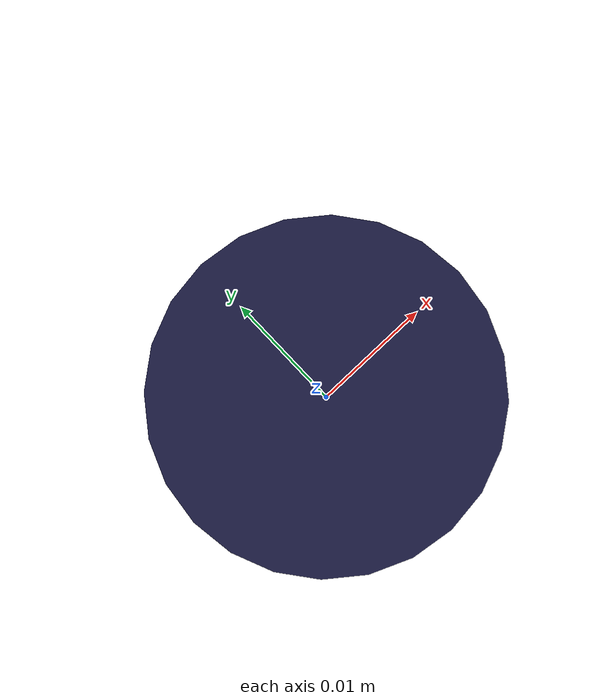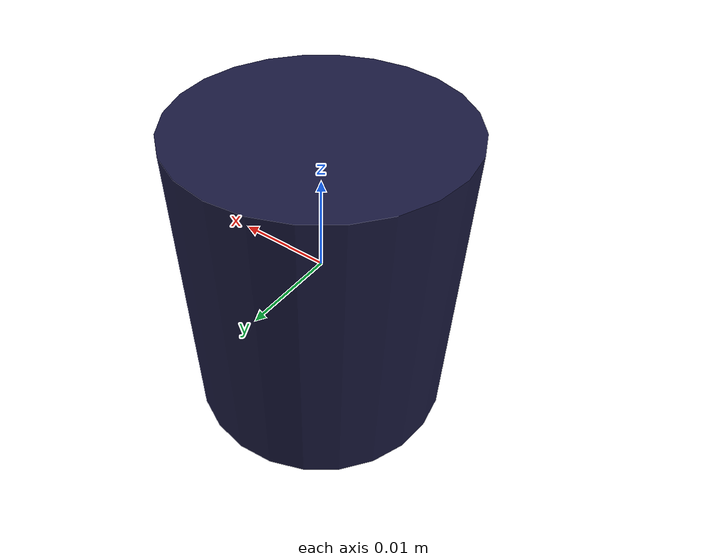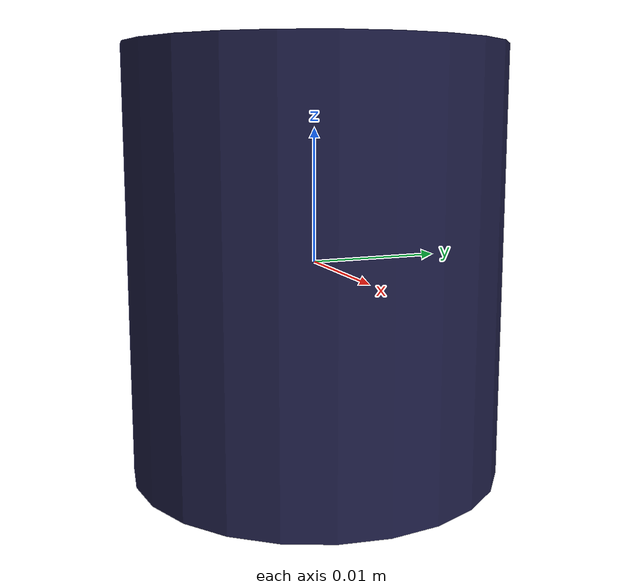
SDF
<?xml version="1.0"?>
<sdf version="1.9">
  <model name="emax_motor">

    <link name="link">
      <inertial>
        <mass>0.030</mass>
        <inertia>
          <ixx>4.03e-6</ixx>  <ixy>0</ixy>  <ixz>0</ixz>
          <iyy>4.03e-6</iyy>  <iyz>0</iyz>
          <izz>2.94e-6</izz>
        </inertia>
      </inertial>

      <collision name="collision">
        <geometry>
          <cylinder><radius>0.014</radius><length>0.032</length></cylinder>
        </geometry>
      </collision>

      <visual name="visual">
        <geometry>
          <cylinder><radius>0.014</radius><length>0.032</length></cylinder>
        </geometry>
        <material>
          <ambient>0.05 0.05 0.15 1</ambient>
          <diffuse>0.10 0.10 0.25 1</diffuse>
          <specular>0.4 0.4 0.6 1</specular>
        </material>
      </visual>
    </link>

  </model>
</sdf>
